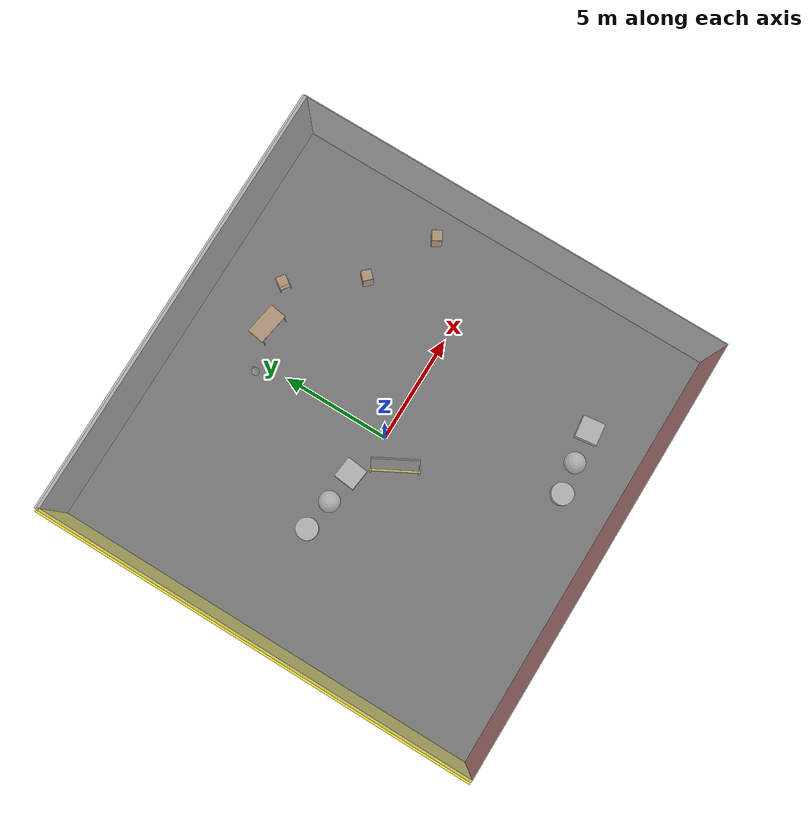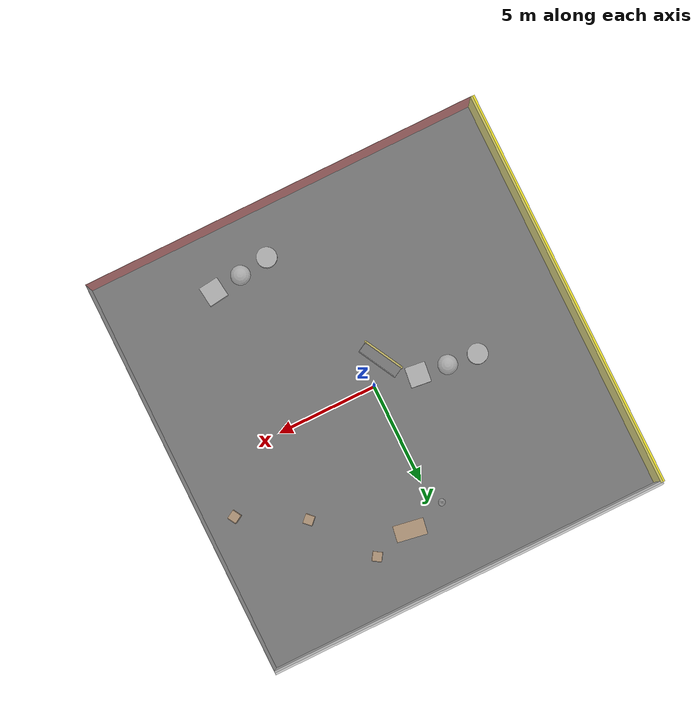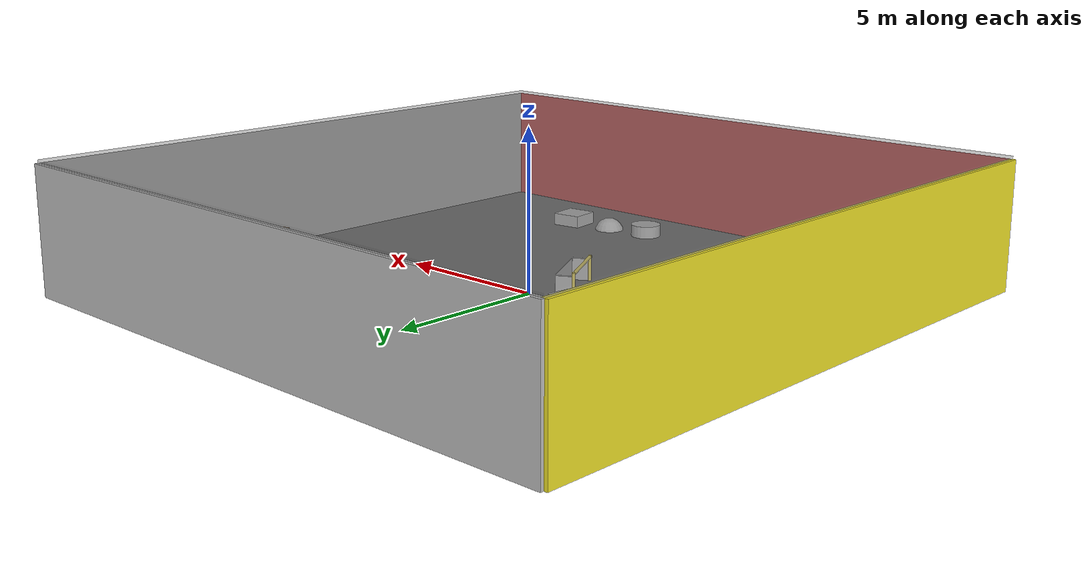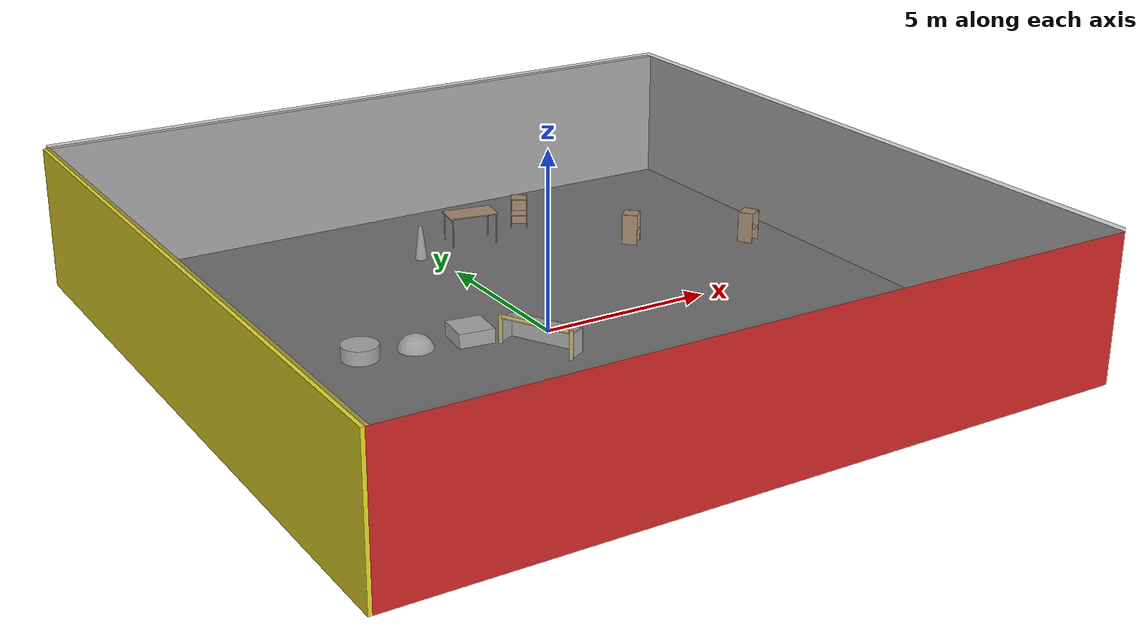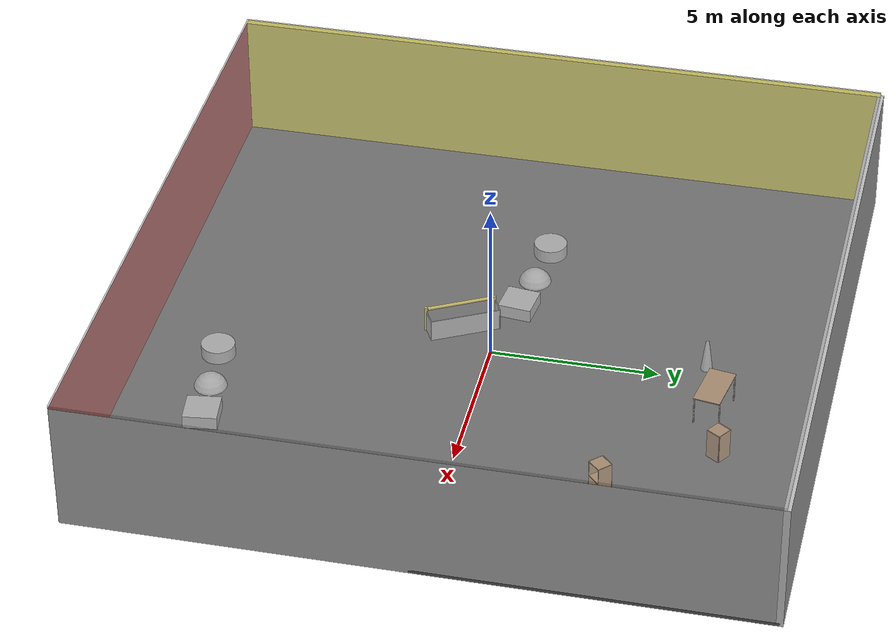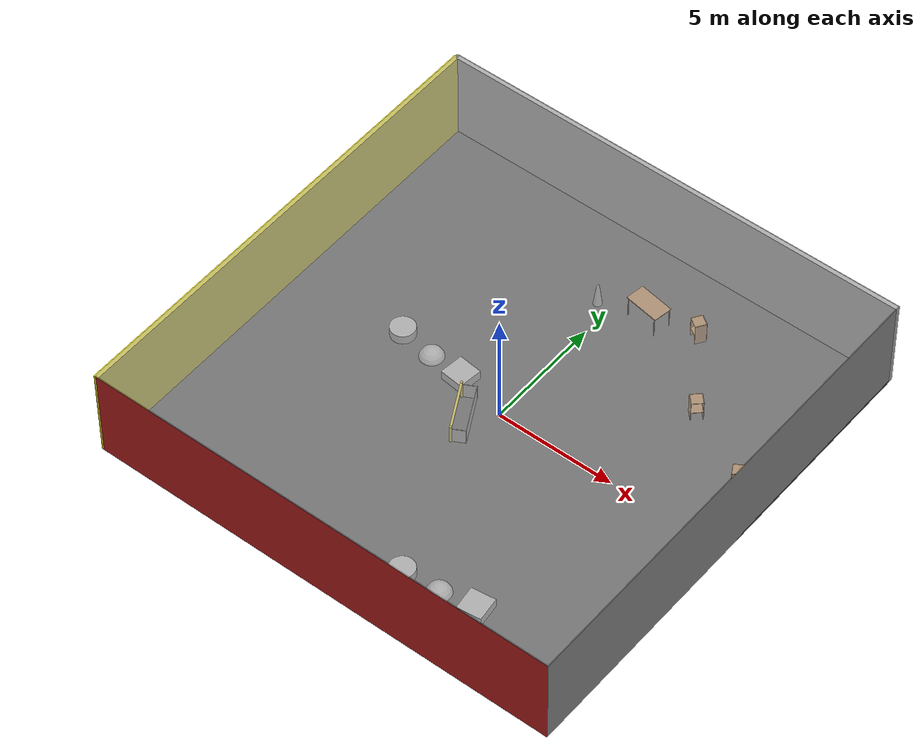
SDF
<sdf version="1.4">
 <world name="default">
  <physics type="ode">
   <max_step_size>0.001</max_step_size>
   <real_time_factor>1</real_time_factor>
   <real_time_update_rate>1000</real_time_update_rate>
   <gravity>0 0 -9.8</gravity>
  </physics>
  <scene><ambient>0.4 0.4 0.4 1</ambient><background>0.7 0.7 0.7 1</background><shadows>1</shadows></scene>
  <model name="Surrounding">
   <static>1</static>
   <link name="Ceiling">
    <collision name="Ceiling_Collision"><geometry><box><size>20 20 0.1</size></box></geometry></collision>
    <visual name="Ceiling_Visual">
     <geometry><box><size>20 20 0.1</size></box></geometry>
     <material>
      <script><uri>file://media/materials/scripts/gazebo.material</uri><name>Gazebo/GreyTransparent</name></script>
     </material>
    </visual>
    <pose>0 0 4.05 0 0 0</pose>
   </link>
   <link name="Wall_South">
    <collision name="Wall_South_Collision">
     <geometry><box><size>20 0 4</size></box></geometry>
     <pose>0 0 2 0 -0 0</pose>
    </collision>
    <visual name="Wall_South_Visual">
     <pose>0 0 2 0 -0 0</pose>
     <geometry><box><size>20 0 4</size></box></geometry>
     <material>
      <script><uri>file://media/materials/scripts/gazebo.material</uri><name>Gazebo/RedBright</name></script>
     </material>
    </visual>
    <velocity_decay><linear>0</linear><angular>0</angular></velocity_decay>
    <pose>0 -10 0 0 -0 0</pose>
   </link>
   <link name="Wall_East">
    <collision name="Wall_21_Collision">
     <geometry><box><size>20 0 4</size></box></geometry>
     <pose>0 0 2 0 -0 0</pose>
    </collision>
    <visual name="Wall_21_Visual">
     <pose>0 0 2 0 -0 0</pose>
     <geometry><box><size>20 0 4</size></box></geometry>
     <material>
      <script><uri>file://media/materials/scripts/gazebo.material</uri><name>Gazebo/Grey</name></script>
     </material>
    </visual>
    <velocity_decay><linear>0</linear><angular>0</angular></velocity_decay>
    <pose>10 0 0 0 -0 1.5708</pose>
   </link>
   <link name="Wall_North">
    <collision name="Wall_22_Collision">
     <geometry><box><size>20 0.2 4</size></box></geometry>
     <pose>0 0 2 0 -0 0</pose>
    </collision>
    <visual name="Wall_22_Visual">
     <pose>0 0 2 0 -0 0</pose>
     <geometry><box><size>20 0.2 4</size></box></geometry>
     <material>
      <script><uri>file://media/materials/scripts/gazebo.material</uri><name>Gazebo/CloudySky</name></script>
     </material>
    </visual>
    <velocity_decay><linear>0</linear><angular>0</angular></velocity_decay>
    <pose>0 10 0 0 -0 0</pose>
   </link>
   <link name="Wall_West">
    <collision name="Wall_23_Collision">
     <geometry><box><size>20 0.2 4</size></box></geometry>
     <pose>0 0 2 0 -0 0</pose>
    </collision>
    <visual name="Wall_23_Visual">
     <pose>0 0 2 0 -0 0</pose>
     <geometry><box><size>20 0.2 4</size></box></geometry>
     <material>
      <script><uri>file://media/materials/scripts/gazebo.material</uri><name>Gazebo/Yellow</name></script>
     </material>
    </visual>
    <velocity_decay><linear>0</linear><angular>0</angular></velocity_decay>
    <pose>-10 0 0 0 0 -1.5708</pose>
   </link>
   <link name="Ground_link">
    <collision name="collision">
     <pose>0 0 .05 0 -0 0</pose>
     <geometry><box><size>20 20 0.1</size></box></geometry>
    </collision>
    <visual name="visual">
     <pose>0 0 .05 0 -0 0</pose>
     <geometry><box><size>20 20 0.1</size></box></geometry>
     <material>
      <script><uri>file://media/materials/scripts/gazebo.material</uri><name>Gazebo/DarkGrey</name></script>
     </material>
    </visual>
   </link>
   <static>1</static>
  </model>
  <spherical_coordinates>
   <surface_model>EARTH_WGS84</surface_model>
   <latitude_deg>0</latitude_deg>
   <longitude_deg>0</longitude_deg>
   <elevation>0</elevation>
   <heading_deg>0</heading_deg>
  </spherical_coordinates>
  <light name="lightball_0" type="diffuse">
   <diffuse>0.8 0.8 0.8 1</diffuse>
   <specular>0.2 0.2 0.2 1</specular>
   <attenuation>
    <range>100</range>
    <constant>0.7</constant>
    <linear>0.01</linear>
    <quadratic>0.001</quadratic>
   </attenuation>
   <direction>-0.5 0.1 -0.9</direction>
   <pose>-2.72295978367 0.0438834241485 0.505334503434 0 0 0</pose>
  </light>
  <light name="lightball_1" type="diffuse">
   <diffuse>0.8 0.8 0.8 1</diffuse>
   <specular>0.2 0.2 0.2 1</specular>
   <attenuation>
    <range>100</range>
    <constant>0.7</constant>
    <linear>0.01</linear>
    <quadratic>0.001</quadratic>
   </attenuation>
   <direction>-0.5 0.1 -0.9</direction>
   <pose>-7.03013343713 8.99487972287 2.76285460123 0 0 0</pose>
  </light>
  <light name="lightball_2" type="diffuse">
   <diffuse>0.8 0.8 0.8 1</diffuse>
   <specular>0.2 0.2 0.2 1</specular>
   <attenuation>
    <range>100</range>
    <constant>0.7</constant>
    <linear>0.01</linear>
    <quadratic>0.001</quadratic>
   </attenuation>
   <direction>-0.5 0.1 -0.9</direction>
   <pose>8.86923877863 -7.06121775923 2.29733736227 0 0 0</pose>
  </light>
  <light name="lightball_3" type="diffuse">
   <diffuse>0.8 0.8 0.8 1</diffuse>
   <specular>0.2 0.2 0.2 1</specular>
   <attenuation>
    <range>100</range>
    <constant>0.7</constant>
    <linear>0.01</linear>
    <quadratic>0.001</quadratic>
   </attenuation>
   <direction>-0.5 0.1 -0.9</direction>
   <pose>8.53214396408 8.78347826871 1.0706148322 0 0 0</pose>
  </light>
  <light name="lightball_4" type="diffuse">
   <diffuse>0.8 0.8 0.8 1</diffuse>
   <specular>0.2 0.2 0.2 1</specular>
   <attenuation>
    <range>100</range>
    <constant>0.7</constant>
    <linear>0.01</linear>
    <quadratic>0.001</quadratic>
   </attenuation>
   <direction>-0.5 0.1 -0.9</direction>
   <pose>-3.43259753744 -6.7237542435 2.66556950048 0 0 0</pose>
  </light>
  <light name="lightball_5" type="diffuse">
   <diffuse>0.8 0.8 0.8 1</diffuse>
   <specular>0.2 0.2 0.2 1</specular>
   <attenuation>
    <range>100</range>
    <constant>0.7</constant>
    <linear>0.01</linear>
    <quadratic>0.001</quadratic>
   </attenuation>
   <direction>-0.5 0.1 -0.9</direction>
   <pose>0.386207383982 -4.73894235057 2.16051794265 0 0 0</pose>
  </light>
  <light name="lightball_6" type="diffuse">
   <diffuse>0.8 0.8 0.8 1</diffuse>
   <specular>0.2 0.2 0.2 1</specular>
   <attenuation>
    <range>100</range>
    <constant>0.7</constant>
    <linear>0.01</linear>
    <quadratic>0.001</quadratic>
   </attenuation>
   <direction>-0.5 0.1 -0.9</direction>
   <pose>-5.52084316522 6.95691945965 2.57034921211 0 0 0</pose>
  </light>
  <light name="lightball_7" type="diffuse">
   <diffuse>0.8 0.8 0.8 1</diffuse>
   <specular>0.2 0.2 0.2 1</specular>
   <attenuation>
    <range>100</range>
    <constant>0.7</constant>
    <linear>0.01</linear>
    <quadratic>0.001</quadratic>
   </attenuation>
   <direction>-0.5 0.1 -0.9</direction>
   <pose>-5.4756016874 1.93758961088 2.55793002949 0 0 0</pose>
  </light>
  <light name="lightball_8" type="diffuse">
   <diffuse>0.8 0.8 0.8 1</diffuse>
   <specular>0.2 0.2 0.2 1</specular>
   <attenuation>
    <range>100</range>
    <constant>0.7</constant>
    <linear>0.01</linear>
    <quadratic>0.001</quadratic>
   </attenuation>
   <direction>-0.5 0.1 -0.9</direction>
   <pose>-1.65759246696 -2.7726325658 2.21800668427 0 0 0</pose>
  </light>
  <light name="lightball_9" type="diffuse">
   <diffuse>0.8 0.8 0.8 1</diffuse>
   <specular>0.2 0.2 0.2 1</specular>
   <attenuation>
    <range>100</range>
    <constant>0.7</constant>
    <linear>0.01</linear>
    <quadratic>0.001</quadratic>
   </attenuation>
   <direction>-0.5 0.1 -0.9</direction>
   <pose>-6.59103492768 6.13257671732 3.22830566403 0 0 0</pose>
  </light>
  <light name="lightball_10" type="diffuse">
   <diffuse>0.8 0.8 0.8 1</diffuse>
   <specular>0.2 0.2 0.2 1</specular>
   <attenuation>
    <range>100</range>
    <constant>0.7</constant>
    <linear>0.01</linear>
    <quadratic>0.001</quadratic>
   </attenuation>
   <direction>-0.5 0.1 -0.9</direction>
   <pose>6.8534771153 0.2751850992 3.22612458416 0 0 0</pose>
  </light>
  <include>
   <uri>model://textured_shapes</uri>
   <pose>-3.60822474342 0.583171177766 0 0 0 1.45397531619</pose>
  </include>
  <include>
   <uri>model://robocup_3Dsim_goal</uri>
   <pose>-1.07235646188 -1.15393877517 0 0 0 0.492793332254</pose>
  </include>
  <include>
   <uri>model://construction_cone</uri>
   <pose>-0.471628165987 6.32198871891 0 0 0 1.3538667907</pose>
  </include>
  <include><uri>model://table</uri><pose>1.46356984007 6.84480370251 0 0 0 2.97607472452</pose></include>
  <include>
   <uri>model://textured_shapes</uri>
   <pose>3.35629258178 -7.56991988113 0 0 0 1.69498638218</pose>
  </include>
  <include><uri>model://cabinet</uri><pose>5.53246269529 4.29828459216 0 0 0 2.35104393784</pose></include>
  <include><uri>model://cabinet</uri><pose>3.40011219416 7.27432058582 0 0 0 0.993205601824</pose></include>
  <include><uri>model://cabinet</uri><pose>8.6278254152 2.62526274727 0 0 0 2.09269365498</pose></include>
 </world>
</sdf>

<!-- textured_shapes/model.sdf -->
<sdf version="1.6">
  <model name="textured_shapes">
    <pose>0 0 0.5 0 0 0</pose>
    <link name="box">
      <pose>0 -1.5 0 0 0 0</pose>
      <collision name="collision">
        <geometry>
          <box>
            <size>1 1 1</size>
          </box>
        </geometry>
      </collision>
      <visual name="visual">
        <geometry>
          <box>
            <size>1 1 1</size>
          </box>
        </geometry>
        <material>
          <script>
            <uri>model://../model_source/models/textured_shapes/materials/scripts</uri>
            <uri>model://../model_source/models/textured_shapes/materials/textures</uri>
            <name>TexturedShape/Squares</name>
          </script>
        </material>
      </visual>
    </link>
    <link name="sphere">
      <collision name="collision">
        <geometry>
          <sphere>
            <radius>0.5</radius>
          </sphere>
        </geometry>
      </collision>
      <visual name="visual">
        <geometry>
          <sphere>
            <radius>0.5</radius>
          </sphere>
        </geometry>
        <material>
          <script>
            <uri>model://../model_source/models/textured_shapes/materials/scripts</uri>
            <uri>model://../model_source/models/textured_shapes/materials/textures</uri>
            <name>TexturedShape/Squares</name>
          </script>
        </material>
      </visual>
    </link>
    <link name="cylinder">
      <pose>0 1.5 0 0 0 0</pose>
      <collision name="collision">
        <geometry>
          <cylinder>
            <radius>0.5</radius>
            <length>1</length>
          </cylinder>
        </geometry>
      </collision>
      <visual name="visual">
        <geometry>
          <cylinder>
            <radius>0.5</radius>
            <length>1</length>
          </cylinder>
        </geometry>
        <material>
          <script>
            <uri>model://../model_source/models/textured_shapes/materials/scripts</uri>
            <uri>model://../model_source/models/textured_shapes/materials/textures</uri>
            <name>TexturedShape/Squares</name>
          </script>
        </material>
      </visual>
    </link>
  </model>
</sdf>

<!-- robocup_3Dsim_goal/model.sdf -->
<sdf version="1.5">
  <model name="robocup_3d_goal">
    <static>true</static>
    <link name="left_post">
      <pose>0 1.05 0.45 0 0 0</pose>
      <collision name="collision">
        <geometry>
          <cylinder>
            <radius>0.05</radius>
            <length>0.9</length>
          </cylinder>
        </geometry>
      </collision>
      <visual name="visual">
        <geometry>
          <cylinder>
            <radius>0.05</radius>
            <length>0.9</length>
          </cylinder>
        </geometry>
        <material>
          <script>
            <uri>file://media/materials/scripts/gazebo.material</uri>
            <name>Gazebo/ZincYellow</name>
          </script>
        </material>
      </visual>
    </link>
    <link name="left_support_horiz_lower">
      <pose>0.30 1.05 0.01 0 0 0</pose>
      <collision name="collision">
        <geometry>
          <box>
            <size>0.50 0.02 0.02</size>
          </box>
        </geometry>
      </collision>
      <visual name="visual">
        <geometry>
          <box>
            <size>0.50 0.02 0.02</size>
          </box>
        </geometry>
        <material>
          <script>
            <uri>file://media/materials/scripts/gazebo.material</uri>
            <name>Gazebo/White</name>
          </script>
        </material>
      </visual>
    </link>
    <link name="left_support_horiz_upper">
      <pose>0.30 1.05 0.79 0 0 0</pose>
      <collision name="collision">
        <geometry>
          <box>
            <size>0.50 0.02 0.02</size>
          </box>
        </geometry>
      </collision>
      <visual name="visual">
        <geometry>
          <box>
            <size>0.50 0.02 0.02</size>
          </box>
        </geometry>
        <material>
          <script>
            <uri>file://media/materials/scripts/gazebo.material</uri>
            <name>Gazebo/White</name>
          </script>
        </material>
      </visual>
    </link>
    <link name="left_support_vertical">
      <pose>0.56 1.05 0.4 0 1.5708 0</pose>
      <collision name="collision">
        <geometry>
          <box>
            <size>0.80 0.02 0.02</size>
          </box>
        </geometry>
      </collision>
      <visual name="visual">
        <geometry>
          <box>
            <size>0.80 0.02 0.02</size>
          </box>
        </geometry>
        <material>
          <script>
            <uri>file://media/materials/scripts/gazebo.material</uri>
            <name>Gazebo/White</name>
          </script>
        </material>
      </visual>
    </link>
    <link name="right_support_horiz_lower">
      <pose>0.30 -1.05 0.01 0 0 0</pose>
      <collision name="collision">
        <geometry>
          <box>
            <size>0.50 0.02 0.02</size>
          </box>
        </geometry>
      </collision>
      <visual name="visual">
        <geometry>
          <box>
            <size>0.50 0.02 0.02</size>
          </box>
        </geometry>
        <material>
          <script>
            <uri>file://media/materials/scripts/gazebo.material</uri>
            <name>Gazebo/White</name>
          </script>
        </material>
      </visual>
    </link>
    <link name="right_support_horiz_upper">
      <pose>0.30 -1.05 0.79 0 0 0</pose>
      <collision name="collision">
        <geometry>
          <box>
            <size>0.50 0.02 0.02</size>
          </box>
        </geometry>
      </collision>
      <visual name="visual">
        <geometry>
          <box>
            <size>0.50 0.02 0.02</size>
          </box>
        </geometry>
        <material>
          <script>
            <uri>file://media/materials/scripts/gazebo.material</uri>
            <name>Gazebo/White</name>
          </script>
        </material>
      </visual>
    </link>
    <link name="right_support_vertical">
      <pose>0.56 -1.05 0.4 0 1.5708 0</pose>
      <collision name="collision">
        <geometry>
          <box>
            <size>0.80 0.02 0.02</size>
          </box>
        </geometry>
      </collision>
      <visual name="visual">
        <geometry>
          <box>
            <size>0.80 0.02 0.02</size>
          </box>
        </geometry>
        <material>
          <script>
            <uri>file://media/materials/scripts/gazebo.material</uri>
            <name>Gazebo/White</name>
          </script>
        </material>
      </visual>
    </link>
    <link name="center_support_horiz_lower">
      <pose>0.56 0 0.01 0 1.5708 0</pose>
      <collision name="collision">
        <geometry>
          <box>
            <size>0.02 2.08 0.02</size>
          </box>
        </geometry>
      </collision>
      <visual name="visual">
        <geometry>
          <box>
            <size>0.02 2.08 0.02</size>
          </box>
        </geometry>
        <material>
          <script>
            <uri>file://media/materials/scripts/gazebo.material</uri>
            <name>Gazebo/White</name>
          </script>
        </material>
      </visual>
    </link>
    <link name="center_support_horiz_upper">
      <pose>0.56 0 0.79 0 1.5708 0</pose>
      <collision name="collision">
        <geometry>
          <box>
            <size>0.02 2.08 0.02</size>
          </box>
        </geometry>
      </collision>
      <visual name="visual">
        <geometry>
          <box>
            <size>0.02 2.08 0.02</size>
          </box>
        </geometry>
        <material>
          <script>
            <uri>file://media/materials/scripts/gazebo.material</uri>
            <name>Gazebo/White</name>
          </script>
        </material>
      </visual>
    </link>
    <link name="right_post">
      <pose>0 -1.05 0.45 0 0 0</pose>
      <collision name="collision">
        <geometry>
          <cylinder>
            <radius>0.05</radius>
            <length>0.9</length>
          </cylinder>
        </geometry>
      </collision>
      <visual name="visual">
        <geometry>
          <cylinder>
            <radius>0.05</radius>
            <length>0.9</length>
          </cylinder>
        </geometry>
        <material>
          <script>
            <uri>file://media/materials/scripts/gazebo.material</uri>
            <name>Gazebo/ZincYellow</name>
          </script>
        </material>
      </visual>
    </link>
    <link name="crossbar">
      <pose>0 0 0.85 1.57 1.57 0</pose>
      <collision name="collision">
        <geometry>
          <cylinder>
            <radius>0.05</radius>
            <length>2.0</length>
          </cylinder>
        </geometry>
      </collision>
      <visual name="visual">
        <geometry>
          <cylinder>
            <radius>0.05</radius>
            <length>2.0</length>
          </cylinder>
        </geometry>
        <material>
          <script>
            <uri>file://media/materials/scripts/gazebo.material</uri>
            <name>Gazebo/ZincYellow</name>
          </script>
        </material>
      </visual>
    </link>
    <link name="center_net">
      <pose>0.56 0 0.40 0 0 0</pose>
      <collision name="collision">
        <geometry>
          <box>
            <size>0.01 2.1 0.80</size>
          </box>
        </geometry>
      </collision>
      <visual name="visual">
        <geometry>
          <box>
            <size>0.01 2.1 0.80</size>
          </box>
        </geometry>
        <material>
          <script>
            <uri>model://../model_source/models/robocup09_spl_field/materials/scripts/</uri>
            <uri>model://../model_source/models/robocup09_spl_field/materials/textures/</uri>
            <name>RoboCup/Net</name>
          </script>
        </material>
      </visual>
    </link>
    <link name="left_net">
      <pose>0.30 1.05 0.40 0 0 0</pose>
      <collision name="collision">
        <geometry>
          <box>
            <size>0.50 0.01 0.76</size>
          </box>
        </geometry>
      </collision>
      <visual name="visual">
        <geometry>
          <box>
            <size>0.50 0.01 0.76</size>
          </box>
        </geometry>
        <material>
          <script>
            <uri>model://../model_source/models/robocup09_spl_field/materials/scripts/</uri>
            <uri>model://../model_source/models/robocup09_spl_field/materials/textures/</uri>
            <name>RoboCup/Net</name>
          </script>
        </material>
      </visual>
    </link>
    <link name="right_net">
      <pose>0.30 -1.05 0.40 0 0 0</pose>
      <collision name="collision">
        <geometry>
          <box>
            <size>0.50 0.01 0.76</size>
          </box>
        </geometry>
      </collision>
      <visual name="visual">
        <geometry>
          <box>
            <size>0.50 0.01 0.76</size>
          </box>
        </geometry>
        <material>
          <script>
            <uri>model://../model_source/models/robocup09_spl_field/materials/scripts/</uri>
            <uri>model://../model_source/models/robocup09_spl_field/materials/textures/</uri>
            <name>RoboCup/Net</name>
          </script>
        </material>
      </visual>
    </link>
  </model>
</sdf>

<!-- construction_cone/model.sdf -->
<sdf version="1.5">
  <model name="Construction Cone">
    <link name="link">
      <collision name="collision">
        <geometry>
          <mesh>
            <scale>10 10 10</scale>
            <uri>file://isr-testbed/construction_cone/meshes/construction_cone.dae</uri>
          </mesh>
        </geometry>
      </collision>
      <visual name="visual">
        <geometry>
          <mesh>
            <scale>10 10 10</scale>
            <uri>file://isr-testbed/construction_cone/meshes/construction_cone.dae</uri>
          </mesh>
        </geometry>
      </visual>
    </link>
  </model>
</sdf>

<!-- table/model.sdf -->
<sdf version="1.5">
  <model name="table">
    <static>true</static>
    <link name="link">
      <collision name="surface">
        <pose>0 0 1.0 0 0 0</pose>
        <geometry>
          <box>
            <size>1.5 0.8 0.03</size>
          </box>
        </geometry>
        <surface>
          <friction>
            <ode>
              <mu>0.6</mu>
              <mu2>0.6</mu2>
            </ode>
          </friction>
        </surface>
      </collision>
      <visual name="visual1">
        <pose>0 0 1.0 0 0 0</pose>
        <geometry>
          <box>
            <size>1.5 0.8 0.03</size>
          </box>
        </geometry>
        <material>
          <script>
            <uri>model://media/materials/scripts/gazebo.material</uri>
            <name>Gazebo/Wood</name>
          </script>
        </material>
      </visual>
      <collision name="front_left_leg">
        <pose>0.68 0.38 0.5 0 0 0</pose>
        <geometry>
          <cylinder>
            <radius>0.02</radius>
            <length>1.0</length>
          </cylinder>
        </geometry>
      </collision>
      <visual name="front_left_leg">
        <pose>0.68 0.38 0.5 0 0 0</pose>
        <geometry>
          <cylinder>
            <radius>0.02</radius>
            <length>1.0</length>
          </cylinder>
        </geometry>
        <material>
          <script>
            <uri>model://media/materials/scripts/gazebo.material</uri>
            <name>Gazebo/Grey</name>
          </script>
        </material>
      </visual>
      <collision name="front_right_leg">
        <pose>0.68 -0.38 0.5 0 0 0</pose>
        <geometry>
          <cylinder>
            <radius>0.02</radius>
            <length>1.0</length>
          </cylinder>
        </geometry>
      </collision>
      <visual name="front_right_leg">
        <pose>0.68 -0.38 0.5 0 0 0</pose>
        <geometry>
          <cylinder>
            <radius>0.02</radius>
            <length>1.0</length>
          </cylinder>
        </geometry>
        <material>
          <script>
            <uri>model://media/materials/scripts/gazebo.material</uri>
            <name>Gazebo/Grey</name>
          </script>
        </material>
      </visual>
      <collision name="back_right_leg">
        <pose>-0.68 -0.38 0.5 0 0 0</pose>
        <geometry>
          <cylinder>
            <radius>0.02</radius>
            <length>1.0</length>
          </cylinder>
        </geometry>
      </collision>
      <visual name="back_right_leg">
        <pose>-0.68 -0.38 0.5 0 0 0</pose>
        <geometry>
          <cylinder>
            <radius>0.02</radius>
            <length>1.0</length>
          </cylinder>
        </geometry>
        <material>
          <script>
            <uri>model://media/materials/scripts/gazebo.material</uri>
            <name>Gazebo/Grey</name>
          </script>
        </material>
      </visual>
      <collision name="back_left_leg">
        <pose>-0.68 0.38 0.5 0 0 0</pose>
        <geometry>
          <cylinder>
            <radius>0.02</radius>
            <length>1.0</length>
          </cylinder>
        </geometry>
      </collision>
      <visual name="back_left_leg">
        <pose>-0.68 0.38 0.5 0 0 0</pose>
        <geometry>
          <cylinder>
            <radius>0.02</radius>
            <length>1.0</length>
          </cylinder>
        </geometry>
        <material>
          <script>
            <uri>model://media/materials/scripts/gazebo.material</uri>
            <name>Gazebo/Grey</name>
          </script>
        </material>
      </visual>
    </link>
  </model>
</sdf>

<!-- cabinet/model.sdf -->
<sdf version="1.5">
  <model name="cabinet">
    <static>true</static>
    <link name="cabinet_bottom_plate">
      <inertial>
        <pose>0 0 -1 0 0 0</pose>
        <inertia>
          <ixx>2.050000</ixx>
          <ixy>0</ixy>
          <ixz>0</ixz>
          <iyy>2.050000</iyy>
          <iyz>0</iyz>
          <izz>2.050000</izz>
        </inertia>
        <mass>25.000000</mass>
      </inertial>
      <collision name="cabinet_bottom_plate_geom">
        <pose>0 0 0.010000 0 0 0</pose>
        <geometry>
          <box>
            <size>0.450000 0.450000 0.020000</size>
          </box>
        </geometry>
      </collision>
      <visual name="cabinet_bottom_plate_geom_visual">
        <pose>0 0 0.010000 0 0 0</pose>
        <geometry>
          <box>
            <size>0.450000 0.450000 0.020000</size>
          </box>
        </geometry>
        <material>
          <script>
            <uri>model://media/materials/scripts/gazebo.material</uri>
            <name>Gazebo/Wood</name>
          </script>
        </material>
      </visual>
      <collision name="cabinet_bottom_plate_geom_cabinet_back_plate">
        <pose>0.235000 0 0.510000 0 0 0</pose>
        <geometry>
          <box>
            <size>0.020000 0.450000 1.020000</size>
          </box>
        </geometry>
      </collision>
      <visual name="cabinet_bottom_plate_geom_cabinet_back_plate_visual">
        <pose>0.235000 0 0.510000 0 0 0</pose>
        <geometry>
          <box>
            <size>0.020000 0.450000 1.020000</size>
          </box>
        </geometry>
        <material>
          <script>
            <uri>model://media/materials/scripts/gazebo.material</uri>
            <name>Gazebo/Wood</name>
          </script>
        </material>
      </visual>
      <collision name="cabinet_bottom_plate_geom_cabinet_left_plate">
        <pose>0 0.235000 0.510000 0 0 0</pose>
        <geometry>
          <box>
            <size>0.450000 0.020000 1.020000</size>
          </box>
        </geometry>
      </collision>
      <visual name="cabinet_bottom_plate_geom_cabinet_left_plate_visual">
        <pose>0 0.235000 0.510000 0 0 0</pose>
        <geometry>
          <box>
            <size>0.450000 0.020000 1.020000</size>
          </box>
        </geometry>
        <material>
          <script>
            <uri>model://media/materials/scripts/gazebo.material</uri>
            <name>Gazebo/Wood</name>
          </script>
        </material>
      </visual>
      <collision name="cabinet_bottom_plate_geom_cabinet_middle_plate">
        <pose>0 0 0.510000 0 0 0</pose>
        <geometry>
          <box>
            <size>0.450000 0.450000 0.020000</size>
          </box>
        </geometry>
      </collision>
      <visual name="cabinet_bottom_plate_geom_cabinet_middle_plate_visual">
        <pose>0 0 0.510000 0 0 0</pose>
        <geometry>
          <box>
            <size>0.450000 0.450000 0.020000</size>
          </box>
        </geometry>
        <material>
          <script>
            <uri>model://media/materials/scripts/gazebo.material</uri>
            <name>Gazebo/Wood</name>
          </script>
        </material>
      </visual>
      <collision name="cabinet_bottom_plate_geom_cabinet_right_plate">
        <pose>0 -0.235000 0.510000 0 0 0</pose>
        <geometry>
          <box>
            <size>0.450000 0.020000 1.020000</size>
          </box>
        </geometry>
      </collision>
      <visual name="cabinet_bottom_plate_geom_cabinet_right_plate_visual">
        <pose>0 -0.235000 0.510000 0 0 0</pose>
        <geometry>
          <box>
            <size>0.450000 0.020000 1.020000</size>
          </box>
        </geometry>
        <material>
          <script>
            <uri>model://media/materials/scripts/gazebo.material</uri>
            <name>Gazebo/Wood</name>
          </script>
        </material>
      </visual>
      <collision name="cabinet_bottom_plate_geom_cabinet_top_plate">
        <pose>0 0 1.010000 0 0 0</pose>
        <geometry>
          <box>
            <size>0.450000 0.450000 0.020000</size>
          </box>
        </geometry>
      </collision>
      <visual name="cabinet_bottom_plate_geom_cabinet_top_plate_visual">
        <pose>0 0 1.010000 0 0 0</pose>
        <geometry>
          <box>
            <size>0.450000 0.450000 0.020000</size>
          </box>
        </geometry>
        <material>
          <script>
            <uri>model://media/materials/scripts/gazebo.material</uri>
            <name>Gazebo/Wood</name>
          </script>
        </material>
      </visual>
    </link>
  </model>
</sdf>
